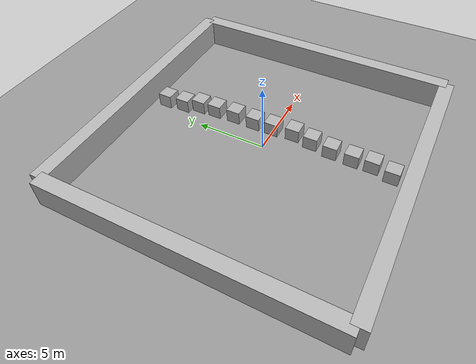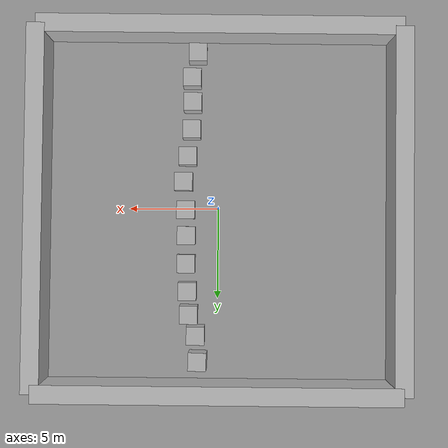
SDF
<sdf version="1.9">
 <world name="enclosed_world">
  <gravity>0 0 -9.81</gravity>
  <magnetic_field>6e-06 2.3e-05 -4.2e-05</magnetic_field>
  <atmosphere type="adiabatic"/>
  <physics type="ode">
   <max_step_size>0.001</max_step_size>
   <real_time_factor>1</real_time_factor>
   <real_time_update_rate>1000</real_time_update_rate>
  </physics>
  <scene><ambient>0.4 0.4 0.4 1</ambient><background>0.7 0.7 0.7 1</background><shadows>true</shadows></scene>
  <model name="ground_plane">
   <static>true</static>
   <link name="link">
    <collision name="col">
     <geometry><plane><normal>0 0 1</normal><size>100 100</size></plane></geometry>
     <surface><friction><ode><mu>1</mu><mu2>1</mu2></ode></friction></surface>
    </collision>
    <visual name="vis">
     <geometry><plane><normal>0 0 1</normal><size>100 100</size></plane></geometry>
     <material><ambient>0.6 0.6 0.6 1</ambient><diffuse>0.6 0.6 0.6 1</diffuse></material>
    </visual>
    <inertial>
     <mass>1</mass>
     <inertia><ixx>1</ixx><ixy>0</ixy><ixz>0</ixz><iyy>1</iyy><iyz>0</iyz><izz>1</izz></inertia>
    </inertial>
   </link>
  </model>
  <model name="wall_north">
   <static>true</static>
   <pose>0 10 1 0 -0 0</pose>
   <link name="l">
    <collision name="c"><geometry><box><size>20 1 2</size></box></geometry></collision>
    <visual name="v"><geometry><box><size>20 1 2</size></box></geometry></visual>
    <inertial>
     <mass>1</mass>
     <inertia><ixx>1</ixx><ixy>0</ixy><ixz>0</ixz><iyy>1</iyy><iyz>0</iyz><izz>1</izz></inertia>
    </inertial>
   </link>
  </model>
  <model name="wall_south">
   <static>true</static>
   <pose>0 -10 1 0 -0 0</pose>
   <link name="l">
    <collision name="c"><geometry><box><size>20 1 2</size></box></geometry></collision>
    <visual name="v"><geometry><box><size>20 1 2</size></box></geometry></visual>
    <inertial>
     <mass>1</mass>
     <inertia><ixx>1</ixx><ixy>0</ixy><ixz>0</ixz><iyy>1</iyy><iyz>0</iyz><izz>1</izz></inertia>
    </inertial>
   </link>
  </model>
  <model name="wall_east">
   <static>true</static>
   <pose>10 0 1 0 -0 0</pose>
   <link name="l">
    <collision name="c"><geometry><box><size>1 20 2</size></box></geometry></collision>
    <visual name="v"><geometry><box><size>1 20 2</size></box></geometry></visual>
    <inertial>
     <mass>1</mass>
     <inertia><ixx>1</ixx><ixy>0</ixy><ixz>0</ixz><iyy>1</iyy><iyz>0</iyz><izz>1</izz></inertia>
    </inertial>
   </link>
  </model>
  <model name="wall_west">
   <static>true</static>
   <pose>-10 0 1 0 -0 0</pose>
   <link name="l">
    <collision name="c"><geometry><box><size>1 20 2</size></box></geometry></collision>
    <visual name="v"><geometry><box><size>1 20 2</size></box></geometry></visual>
    <inertial>
     <mass>1</mass>
     <inertia><ixx>1</ixx><ixy>0</ixy><ixz>0</ixz><iyy>1</iyy><iyz>0</iyz><izz>1</izz></inertia>
    </inertial>
   </link>
  </model>
  <model name="box">
   <pose>1.60635 5.84815 0.5 0 -0 0</pose>
   <link name="box_link">
    <inertial>
     <inertia><ixx>0.16666</ixx><ixy>0</ixy><ixz>0</ixz><iyy>0.16666</iyy><iyz>0</iyz><izz>0.16666</izz></inertia>
     <mass>1</mass>
    </inertial>
    <collision name="box_collision"><geometry><box><size>1 1 1</size></box></geometry></collision>
    <visual name="box_visual">
     <geometry><box><size>1 1 1</size></box></geometry>
     <material>
      <ambient>0.3 0.3 0.3 1</ambient>
      <diffuse>0.7 0.7 0.7 1</diffuse>
      <specular>1 1 1 1</specular>
     </material>
    </visual>
   </link>
   <static>false</static>
  </model>
  <model name="box_0">
   <pose>1.69199 4.55768 0.5 0 -0 0</pose>
   <link name="box_link">
    <inertial>
     <inertia><ixx>0.16666</ixx><ixy>0</ixy><ixz>0</ixz><iyy>0.16666</iyy><iyz>0</iyz><izz>0.16666</izz></inertia>
     <mass>1</mass>
    </inertial>
    <collision name="box_collision"><geometry><box><size>1 1 1</size></box></geometry></collision>
    <visual name="box_visual">
     <geometry><box><size>1 1 1</size></box></geometry>
     <material>
      <ambient>0.3 0.3 0.3 1</ambient>
      <diffuse>0.7 0.7 0.7 1</diffuse>
      <specular>1 1 1 1</specular>
     </material>
    </visual>
   </link>
   <static>false</static>
  </model>
  <model name="box_1">
   <pose>1.77946 3.03115 0.5 -0 -0 -0</pose>
   <link name="box_link">
    <inertial>
     <inertia><ixx>0.16666</ixx><ixy>0</ixy><ixz>0</ixz><iyy>0.16666</iyy><iyz>0</iyz><izz>0.16666</izz></inertia>
     <mass>1</mass>
    </inertial>
    <collision name="box_collision"><geometry><box><size>1 1 1</size></box></geometry></collision>
    <visual name="box_visual">
     <geometry><box><size>1 1 1</size></box></geometry>
     <material>
      <ambient>0.3 0.3 0.3 1</ambient>
      <diffuse>0.7 0.7 0.7 1</diffuse>
      <specular>1 1 1 1</specular>
     </material>
    </visual>
   </link>
   <static>false</static>
  </model>
  <model name="box_2">
   <pose>1.77946 1.46842 0.5 -0 -0 -0</pose>
   <link name="box_link">
    <inertial>
     <inertia><ixx>0.16666</ixx><ixy>0</ixy><ixz>0</ixz><iyy>0.16666</iyy><iyz>0</iyz><izz>0.16666</izz></inertia>
     <mass>1</mass>
    </inertial>
    <collision name="box_collision"><geometry><box><size>1 1 1</size></box></geometry></collision>
    <visual name="box_visual">
     <geometry><box><size>1 1 1</size></box></geometry>
     <material>
      <ambient>0.3 0.3 0.3 1</ambient>
      <diffuse>0.7 0.7 0.7 1</diffuse>
      <specular>1 1 1 1</specular>
     </material>
    </visual>
   </link>
   <static>false</static>
  </model>
  <model name="box_3">
   <pose>1.82318 0.040575 0.5 -0 0 -0</pose>
   <link name="box_link">
    <inertial>
     <inertia><ixx>0.16666</ixx><ixy>0</ixy><ixz>0</ixz><iyy>0.16666</iyy><iyz>0</iyz><izz>0.16666</izz></inertia>
     <mass>1</mass>
    </inertial>
    <collision name="box_collision"><geometry><box><size>1 1 1</size></box></geometry></collision>
    <visual name="box_visual">
     <geometry><box><size>1 1 1</size></box></geometry>
     <material>
      <ambient>0.3 0.3 0.3 1</ambient>
      <diffuse>0.7 0.7 0.7 1</diffuse>
      <specular>1 1 1 1</specular>
     </material>
    </visual>
   </link>
   <static>false</static>
  </model>
  <model name="box_4">
   <pose>1.95597 -1.5207 0.5 0 -0 0</pose>
   <link name="box_link">
    <inertial>
     <inertia><ixx>0.16666</ixx><ixy>0</ixy><ixz>0</ixz><iyy>0.16666</iyy><iyz>0</iyz><izz>0.16666</izz></inertia>
     <mass>1</mass>
    </inertial>
    <collision name="box_collision"><geometry><box><size>1 1 1</size></box></geometry></collision>
    <visual name="box_visual">
     <geometry><box><size>1 1 1</size></box></geometry>
     <material>
      <ambient>0.3 0.3 0.3 1</ambient>
      <diffuse>0.7 0.7 0.7 1</diffuse>
      <specular>1 1 1 1</specular>
     </material>
    </visual>
   </link>
   <static>false</static>
  </model>
  <model name="box_5">
   <pose>1.73549 -2.93943 0.5 0 -0 0</pose>
   <link name="box_link">
    <inertial>
     <inertia><ixx>0.16666</ixx><ixy>0</ixy><ixz>0</ixz><iyy>0.16666</iyy><iyz>0</iyz><izz>0.16666</izz></inertia>
     <mass>1</mass>
    </inertial>
    <collision name="box_collision"><geometry><box><size>1 1 1</size></box></geometry></collision>
    <visual name="box_visual">
     <geometry><box><size>1 1 1</size></box></geometry>
     <material>
      <ambient>0.3 0.3 0.3 1</ambient>
      <diffuse>0.7 0.7 0.7 1</diffuse>
      <specular>1 1 1 1</specular>
     </material>
    </visual>
   </link>
   <static>false</static>
  </model>
  <model name="box_6">
   <pose>1.52362 -4.43538 0.5 -0 -0 -0</pose>
   <link name="box_link">
    <inertial>
     <inertia><ixx>0.16666</ixx><ixy>0</ixy><ixz>0</ixz><iyy>0.16666</iyy><iyz>0</iyz><izz>0.16666</izz></inertia>
     <mass>1</mass>
    </inertial>
    <collision name="box_collision"><geometry><box><size>1 1 1</size></box></geometry></collision>
    <visual name="box_visual">
     <geometry><box><size>1 1 1</size></box></geometry>
     <material>
      <ambient>0.3 0.3 0.3 1</ambient>
      <diffuse>0.7 0.7 0.7 1</diffuse>
      <specular>1 1 1 1</specular>
     </material>
    </visual>
   </link>
   <static>false</static>
  </model>
  <model name="box_7">
   <pose>1.48121 -5.96482 0.5 0 -0 0</pose>
   <link name="box_link">
    <inertial>
     <inertia><ixx>0.16666</ixx><ixy>0</ixy><ixz>0</ixz><iyy>0.16666</iyy><iyz>0</iyz><izz>0.16666</izz></inertia>
     <mass>1</mass>
    </inertial>
    <collision name="box_collision"><geometry><box><size>1 1 1</size></box></geometry></collision>
    <visual name="box_visual">
     <geometry><box><size>1 1 1</size></box></geometry>
     <material>
      <ambient>0.3 0.3 0.3 1</ambient>
      <diffuse>0.7 0.7 0.7 1</diffuse>
      <specular>1 1 1 1</specular>
     </material>
    </visual>
   </link>
   <static>false</static>
  </model>
  <model name="box_8">
   <pose>1.52362 -7.33062 0.5 -0 -0 -0</pose>
   <link name="box_link">
    <inertial>
     <inertia><ixx>0.16666</ixx><ixy>0</ixy><ixz>0</ixz><iyy>0.16666</iyy><iyz>0</iyz><izz>0.16666</izz></inertia>
     <mass>1</mass>
    </inertial>
    <collision name="box_collision"><geometry><box><size>1 1 1</size></box></geometry></collision>
    <visual name="box_visual">
     <geometry><box><size>1 1 1</size></box></geometry>
     <material>
      <ambient>0.3 0.3 0.3 1</ambient>
      <diffuse>0.7 0.7 0.7 1</diffuse>
      <specular>1 1 1 1</specular>
     </material>
    </visual>
   </link>
   <static>false</static>
  </model>
  <model name="box_9">
   <pose>1.22188 -8.73014 0.5 0 -0 0</pose>
   <link name="box_link">
    <inertial>
     <inertia><ixx>0.16666</ixx><ixy>0</ixy><ixz>0</ixz><iyy>0.16666</iyy><iyz>0</iyz><izz>0.16666</izz></inertia>
     <mass>1</mass>
    </inertial>
    <collision name="box_collision"><geometry><box><size>1 1 1</size></box></geometry></collision>
    <visual name="box_visual">
     <geometry><box><size>1 1 1</size></box></geometry>
     <material>
      <ambient>0.3 0.3 0.3 1</ambient>
      <diffuse>0.7 0.7 0.7 1</diffuse>
      <specular>1 1 1 1</specular>
     </material>
    </visual>
   </link>
   <static>false</static>
  </model>
  <model name="box_10">
   <pose>1.21938 6.98971 0.5 0 -0 0</pose>
   <link name="box_link">
    <inertial>
     <inertia><ixx>0.16666</ixx><ixy>0</ixy><ixz>0</ixz><iyy>0.16666</iyy><iyz>0</iyz><izz>0.16666</izz></inertia>
     <mass>1</mass>
    </inertial>
    <collision name="box_collision"><geometry><box><size>1 1 1</size></box></geometry></collision>
    <visual name="box_visual">
     <geometry><box><size>1 1 1</size></box></geometry>
     <material>
      <ambient>0.3 0.3 0.3 1</ambient>
      <diffuse>0.7 0.7 0.7 1</diffuse>
      <specular>1 1 1 1</specular>
     </material>
    </visual>
   </link>
   <static>false</static>
  </model>
  <model name="box_11">
   <pose>1.08876 8.41841 0.476901 -0.000214 0.044913 -0.021203</pose>
   <link name="box_link">
    <inertial>
     <inertia><ixx>0.16666</ixx><ixy>0</ixy><ixz>0</ixz><iyy>0.16666</iyy><iyz>0</iyz><izz>0.16666</izz></inertia>
     <mass>1</mass>
    </inertial>
    <collision name="box_collision"><geometry><box><size>1 1 1</size></box></geometry></collision>
    <visual name="box_visual">
     <geometry><box><size>1 1 1</size></box></geometry>
     <material>
      <ambient>0.3 0.3 0.3 1</ambient>
      <diffuse>0.7 0.7 0.7 1</diffuse>
      <specular>1 1 1 1</specular>
     </material>
    </visual>
   </link>
   <static>false</static>
  </model>
  <light name="sun" type="directional">
   <pose>0 0 10 0 -0 0</pose>
   <intensity>1</intensity>
   <direction>-0.5 0.2 -1</direction>
   <diffuse>1 1 1 1</diffuse>
   <specular>0.1 0.1 0.1 1</specular>
   <attenuation><range>10</range><linear>1</linear><constant>1</constant><quadratic>0</quadratic></attenuation>
   <spot><inner_angle>0</inner_angle><outer_angle>0</outer_angle><falloff>0</falloff></spot>
  </light>
 </world>
</sdf>
